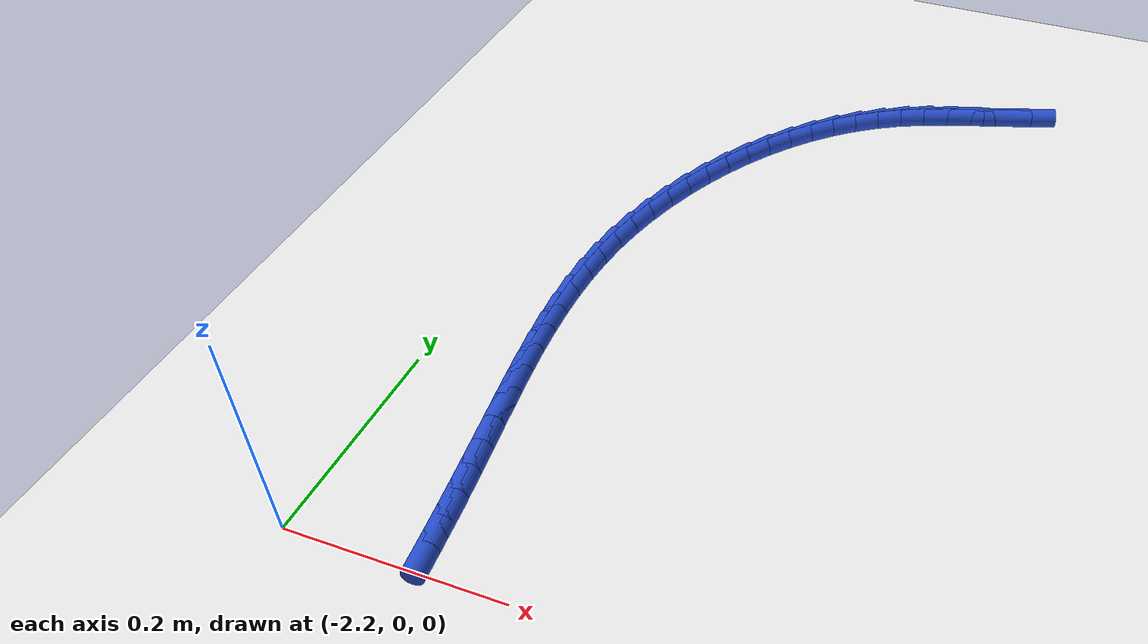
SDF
<sdf version="1.6">
 <world name="default">
  <model name="ground_plane">
   <static>1</static>
   <link name="link">
    <collision name="collision">
     <geometry><plane><normal>0 0 1</normal><size>100 100</size></plane></geometry>
     <surface><friction><ode><mu>100</mu><mu2>50</mu2></ode></friction></surface>
    </collision>
    <visual name="visual">
     <cast_shadows>0</cast_shadows>
     <geometry><plane><normal>0 0 1</normal><size>100 100</size></plane></geometry>
     <material>
      <script><uri>file://media/materials/scripts/gazebo.material</uri><name>Gazebo/WhiteGlow</name></script>
     </material>
    </visual>
   </link>
  </model>
  <model name="line">
   <link name="link_104">
    <pose>-1.7692264215977465 0.7624006203727641 0.01 0 1.57 0.33534031547719884</pose>
    <collision name="collision">
     <geometry><cylinder><radius>0.01</radius><length>0.08</length></cylinder></geometry>
    </collision>
    <visual name="visual">
     <material>
      <script><name>Gazebo/Blue</name><uri>file://media/materials/scripts/gazebo.material</uri></script>
     </material>
     <geometry><cylinder><radius>0.01</radius><length>0.08</length></cylinder></geometry>
    </visual>
   </link>
   <link name="link_105">
    <pose>-1.794505840812203 0.7535906740716695 0.01 0 1.57 0.3203967697265908</pose>
    <collision name="collision">
     <geometry><cylinder><radius>0.01</radius><length>0.08</length></cylinder></geometry>
    </collision>
    <visual name="visual">
     <material>
      <script><name>Gazebo/Blue</name><uri>file://media/materials/scripts/gazebo.material</uri></script>
     </material>
     <geometry><cylinder><radius>0.01</radius><length>0.08</length></cylinder></geometry>
    </visual>
   </link>
   <link name="link_106">
    <pose>-1.820029947707964 0.7451210146395257 0.01 0 1.57 0.33207676167432676</pose>
    <collision name="collision">
     <geometry><cylinder><radius>0.01</radius><length>0.08</length></cylinder></geometry>
    </collision>
    <visual name="visual">
     <material>
      <script><name>Gazebo/Blue</name><uri>file://media/materials/scripts/gazebo.material</uri></script>
     </material>
     <geometry><cylinder><radius>0.01</radius><length>0.08</length></cylinder></geometry>
    </visual>
   </link>
   <link name="link_107">
    <pose>-1.8454557385968353 0.736353008534997 0.01 0 1.57 0.37050194751833143</pose>
    <collision name="collision">
     <geometry><cylinder><radius>0.01</radius><length>0.08</length></cylinder></geometry>
    </collision>
    <visual name="visual">
     <material>
      <script><name>Gazebo/Blue</name><uri>file://media/materials/scripts/gazebo.material</uri></script>
     </material>
     <geometry><cylinder><radius>0.01</radius><length>0.08</length></cylinder></geometry>
    </visual>
   </link>
   <link name="link_108">
    <pose>-1.8704402097906268 0.726648022216749 0.01 0 1.57 0.4361921595259842</pose>
    <collision name="collision">
     <geometry><cylinder><radius>0.01</radius><length>0.08</length></cylinder></geometry>
    </collision>
    <visual name="visual">
     <material>
      <script><name>Gazebo/Blue</name><uri>file://media/materials/scripts/gazebo.material</uri></script>
     </material>
     <geometry><cylinder><radius>0.01</radius><length>0.08</length></cylinder></geometry>
    </visual>
   </link>
   <link name="link_109">
    <pose>-1.8946403624448043 0.7153674346797552 0.01 0 1.57 0.5232091866314043</pose>
    <collision name="collision">
     <geometry><cylinder><radius>0.01</radius><length>0.08</length></cylinder></geometry>
    </collision>
    <visual name="visual">
     <material>
      <script><name>Gazebo/Blue</name><uri>file://media/materials/scripts/gazebo.material</uri></script>
     </material>
     <geometry><cylinder><radius>0.01</radius><length>0.08</length></cylinder></geometry>
    </visual>
   </link>
   <link name="link_110">
    <pose>-1.9177718654428537 0.7020244682000765 0.01 0 1.57 0.609925888993529</pose>
    <collision name="collision">
     <geometry><cylinder><radius>0.01</radius><length>0.08</length></cylinder></geometry>
    </collision>
    <visual name="visual">
     <material>
      <script><name>Gazebo/Blue</name><uri>file://media/materials/scripts/gazebo.material</uri></script>
     </material>
     <geometry><cylinder><radius>0.01</radius><length>0.08</length></cylinder></geometry>
    </visual>
   </link>
   <link name="link_111">
    <pose>-1.9397551657680738 0.6866623498727465 0.01 0 1.57 0.6915799363572562</pose>
    <collision name="collision">
     <geometry><cylinder><radius>0.01</radius><length>0.08</length></cylinder></geometry>
    </collision>
    <visual name="visual">
     <material>
      <script><name>Gazebo/Blue</name><uri>file://media/materials/scripts/gazebo.material</uri></script>
     </material>
     <geometry><cylinder><radius>0.01</radius><length>0.08</length></cylinder></geometry>
    </visual>
   </link>
   <link name="link_112">
    <pose>-1.9605553627344265 0.6694398755496798 0.01 0 1.57 0.7683075674658049</pose>
    <collision name="collision">
     <geometry><cylinder><radius>0.01</radius><length>0.08</length></cylinder></geometry>
    </collision>
    <visual name="visual">
     <material>
      <script><name>Gazebo/Blue</name><uri>file://media/materials/scripts/gazebo.material</uri></script>
     </material>
     <geometry><cylinder><radius>0.01</radius><length>0.08</length></cylinder></geometry>
    </visual>
   </link>
   <link name="link_113">
    <pose>-1.9801375556558747 0.6505158410827907 0.01 0 1.57 0.8404385504691751</pose>
    <collision name="collision">
     <geometry><cylinder><radius>0.01</radius><length>0.08</length></cylinder></geometry>
    </collision>
    <visual name="visual">
     <material>
      <script><name>Gazebo/Blue</name><uri>file://media/materials/scripts/gazebo.material</uri></script>
     </material>
     <geometry><cylinder><radius>0.01</radius><length>0.08</length></cylinder></geometry>
    </visual>
   </link>
   <link name="link_114">
    <pose>-1.9984668438463824 0.6300490423239932 0.01 0 1.57 0.9084302336866495</pose>
    <collision name="collision">
     <geometry><cylinder><radius>0.01</radius><length>0.08</length></cylinder></geometry>
    </collision>
    <visual name="visual">
     <material>
      <script><name>Gazebo/Blue</name><uri>file://media/materials/scripts/gazebo.material</uri></script>
     </material>
     <geometry><cylinder><radius>0.01</radius><length>0.08</length></cylinder></geometry>
    </visual>
   </link>
   <link name="link_115">
    <pose>-2.015508326619911 0.6081982751252019 0.01 0 1.57 0.9728159416372564</pose>
    <collision name="collision">
     <geometry><cylinder><radius>0.01</radius><length>0.08</length></cylinder></geometry>
    </collision>
    <visual name="visual">
     <material>
      <script><name>Gazebo/Blue</name><uri>file://media/materials/scripts/gazebo.material</uri></script>
     </material>
     <geometry><cylinder><radius>0.01</radius><length>0.08</length></cylinder></geometry>
    </visual>
   </link>
   <link name="link_116">
    <pose>-2.031227103290425 0.5851223353383309 0.01 0 1.57 1.0341687422427408</pose>
    <collision name="collision">
     <geometry><cylinder><radius>0.01</radius><length>0.08</length></cylinder></geometry>
    </collision>
    <visual name="visual">
     <material>
      <script><name>Gazebo/Blue</name><uri>file://media/materials/scripts/gazebo.material</uri></script>
     </material>
     <geometry><cylinder><radius>0.01</radius><length>0.08</length></cylinder></geometry>
    </visual>
   </link>
   <link name="link_117">
    <pose>-2.045588273171887 0.5609800188152949 0.01 0 1.57 1.09307878672978</pose>
    <collision name="collision">
     <geometry><cylinder><radius>0.01</radius><length>0.08</length></cylinder></geometry>
    </collision>
    <visual name="visual">
     <material>
      <script><name>Gazebo/Blue</name><uri>file://media/materials/scripts/gazebo.material</uri></script>
     </material>
     <geometry><cylinder><radius>0.01</radius><length>0.08</length></cylinder></geometry>
    </visual>
   </link>
   <link name="link_118">
    <pose>-2.0585569355782583 0.5359301214080081 0.01 0 1.57 1.1501414262136973</pose>
    <collision name="collision">
     <geometry><cylinder><radius>0.01</radius><length>0.08</length></cylinder></geometry>
    </collision>
    <visual name="visual">
     <material>
      <script><name>Gazebo/Blue</name><uri>file://media/materials/scripts/gazebo.material</uri></script>
     </material>
     <geometry><cylinder><radius>0.01</radius><length>0.08</length></cylinder></geometry>
    </visual>
   </link>
   <link name="link_119">
    <pose>-2.070098189823504 0.5101314389683849 0.01 0 1.57 1.2059533410877241</pose>
    <collision name="collision">
     <geometry><cylinder><radius>0.01</radius><length>0.08</length></cylinder></geometry>
    </collision>
    <visual name="visual">
     <material>
      <script><name>Gazebo/Blue</name><uri>file://media/materials/scripts/gazebo.material</uri></script>
     </material>
     <geometry><cylinder><radius>0.01</radius><length>0.08</length></cylinder></geometry>
    </visual>
   </link>
   <link name="link_120">
    <pose>-2.080177135221586 0.4837427673483395 0.01 0 1.57 1.2611143833424263</pose>
    <collision name="collision">
     <geometry><cylinder><radius>0.01</radius><length>0.08</length></cylinder></geometry>
    </collision>
    <visual name="visual">
     <material>
      <script><name>Gazebo/Blue</name><uri>file://media/materials/scripts/gazebo.material</uri></script>
     </material>
     <geometry><cylinder><radius>0.01</radius><length>0.08</length></cylinder></geometry>
    </visual>
   </link>
   <link name="link_121">
    <pose>-2.0887588710864673 0.4569229023997864 0.01 0 1.57 1.3162333716864525</pose>
    <collision name="collision">
     <geometry><cylinder><radius>0.01</radius><length>0.08</length></cylinder></geometry>
    </collision>
    <visual name="visual">
     <material>
      <script><name>Gazebo/Blue</name><uri>file://media/materials/scripts/gazebo.material</uri></script>
     </material>
     <geometry><cylinder><radius>0.01</radius><length>0.08</length></cylinder></geometry>
    </visual>
   </link>
   <link name="link_122">
    <pose>-2.0958084967321113 0.42983063997463994 0.01 0 1.57 1.371936512329695</pose>
    <collision name="collision">
     <geometry><cylinder><radius>0.01</radius><length>0.08</length></cylinder></geometry>
    </collision>
    <visual name="visual">
     <material>
      <script><name>Gazebo/Blue</name><uri>file://media/materials/scripts/gazebo.material</uri></script>
     </material>
     <geometry><cylinder><radius>0.01</radius><length>0.08</length></cylinder></geometry>
    </visual>
   </link>
   <link name="link_123">
    <pose>-2.1012911114724804 0.4026247759248148 0.01 0 1.57 1.4287980865247707</pose>
    <collision name="collision">
     <geometry><cylinder><radius>0.01</radius><length>0.08</length></cylinder></geometry>
    </collision>
    <visual name="visual">
     <material>
      <script><name>Gazebo/Blue</name><uri>file://media/materials/scripts/gazebo.material</uri></script>
     </material>
     <geometry><cylinder><radius>0.01</radius><length>0.08</length></cylinder></geometry>
    </visual>
   </link>
   <link name="link_124">
    <pose>-2.1051742891349505 0.3754621644780082 0.01 0 1.57 1.4843701774728995</pose>
    <collision name="collision">
     <geometry><cylinder><radius>0.01</radius><length>0.08</length></cylinder></geometry>
    </collision>
    <visual name="visual">
     <material>
      <script><name>Gazebo/Blue</name><uri>file://media/materials/scripts/gazebo.material</uri></script>
     </material>
     <geometry><cylinder><radius>0.01</radius><length>0.08</length></cylinder></geometry>
    </visual>
   </link>
   <link name="link_125">
    <pose>-2.107516557285715 0.34842829311122614 0.01 0 1.57 1.5345769376408323</pose>
    <collision name="collision">
     <geometry><cylinder><radius>0.01</radius><length>0.08</length></cylinder></geometry>
    </collision>
    <visual name="visual">
     <material>
      <script><name>Gazebo/Blue</name><uri>file://media/materials/scripts/gazebo.material</uri></script>
     </material>
     <geometry><cylinder><radius>0.01</radius><length>0.08</length></cylinder></geometry>
    </visual>
   </link>
   <link name="link_126">
    <pose>-2.1084916489093564 0.32151825349718816 0.01 0 1.57 -1.5629246189424946</pose>
    <collision name="collision">
     <geometry><cylinder><radius>0.01</radius><length>0.08</length></cylinder></geometry>
    </collision>
    <visual name="visual">
     <material>
      <script><name>Gazebo/Blue</name><uri>file://media/materials/scripts/gazebo.material</uri></script>
     </material>
     <geometry><cylinder><radius>0.01</radius><length>0.08</length></cylinder></geometry>
    </visual>
   </link>
   <link name="link_127">
    <pose>-2.1082807069449583 0.2947213230960038 0.01 0 1.57 -1.5252816724374487</pose>
    <collision name="collision">
     <geometry><cylinder><radius>0.01</radius><length>0.08</length></cylinder></geometry>
    </collision>
    <visual name="visual">
     <material>
      <script><name>Gazebo/Blue</name><uri>file://media/materials/scripts/gazebo.material</uri></script>
     </material>
     <geometry><cylinder><radius>0.01</radius><length>0.08</length></cylinder></geometry>
    </visual>
   </link>
   <link name="link_128">
    <pose>-2.1070648743316007 0.26802677936778213 0.01 0 1.57 -1.494278362595281</pose>
    <collision name="collision">
     <geometry><cylinder><radius>0.01</radius><length>0.08</length></cylinder></geometry>
    </collision>
    <visual name="visual">
     <material>
      <script><name>Gazebo/Blue</name><uri>file://media/materials/scripts/gazebo.material</uri></script>
     </material>
     <geometry><cylinder><radius>0.01</radius><length>0.08</length></cylinder></geometry>
    </visual>
   </link>
   <link name="link_129">
    <pose>-2.105025294008367 0.24142389977263293 0.01 0 1.57 -1.4700081854612153</pose>
    <collision name="collision">
     <geometry><cylinder><radius>0.01</radius><length>0.08</length></cylinder></geometry>
    </collision>
    <visual name="visual">
     <material>
      <script><name>Gazebo/Blue</name><uri>file://media/materials/scripts/gazebo.material</uri></script>
     </material>
     <geometry><cylinder><radius>0.01</radius><length>0.08</length></cylinder></geometry>
    </visual>
   </link>
   <link name="link_130">
    <pose>-2.1023431089143374 0.21490196177066526 0.01 0 1.57 -1.4525064437650896</pose>
    <collision name="collision">
     <geometry><cylinder><radius>0.01</radius><length>0.08</length></cylinder></geometry>
    </collision>
    <visual name="visual">
     <material>
      <script><name>Gazebo/Blue</name><uri>file://media/materials/scripts/gazebo.material</uri></script>
     </material>
     <geometry><cylinder><radius>0.01</radius><length>0.08</length></cylinder></geometry>
    </visual>
   </link>
   <link name="link_131">
    <pose>-2.099199461988594 0.18845024282198852 0.01 0 1.57 -1.4417830140535484</pose>
    <collision name="collision">
     <geometry><cylinder><radius>0.01</radius><length>0.08</length></cylinder></geometry>
    </collision>
    <visual name="visual">
     <material>
      <script><name>Gazebo/Blue</name><uri>file://media/materials/scripts/gazebo.material</uri></script>
     </material>
     <geometry><cylinder><radius>0.01</radius><length>0.08</length></cylinder></geometry>
    </visual>
   </link>
   <link name="link_132">
    <pose>-2.0957754961702184 0.1620580203867122 0.01 0 1.57 -1.4378205370427277</pose>
    <collision name="collision">
     <geometry><cylinder><radius>0.01</radius><length>0.08</length></cylinder></geometry>
    </collision>
    <visual name="visual">
     <material>
      <script><name>Gazebo/Blue</name><uri>file://media/materials/scripts/gazebo.material</uri></script>
     </material>
     <geometry><cylinder><radius>0.01</radius><length>0.08</length></cylinder></geometry>
    </visual>
   </link>
   <link name="link_133">
    <pose>-2.0922516510120843 0.13571449998541255 0.01 0 1.57 -1.4389261145003667</pose>
    <collision name="collision">
     <geometry><cylinder><radius>0.01</radius><length>0.08</length></cylinder></geometry>
    </collision>
    <visual name="visual">
     <material>
      <script><name>Gazebo/Blue</name><uri>file://media/materials/scripts/gazebo.material</uri></script>
     </material>
     <geometry><cylinder><radius>0.01</radius><length>0.08</length></cylinder></geometry>
    </visual>
   </link>
   <link name="link_134">
    <pose>-2.0887618443668075 0.10940412908490674 0.01 0 1.57 -1.4423625370397712</pose>
    <collision name="collision">
     <geometry><cylinder><radius>0.01</radius><length>0.08</length></cylinder></geometry>
    </collision>
    <visual name="visual">
     <material>
      <script><name>Gazebo/Blue</name><uri>file://media/materials/scripts/gazebo.material</uri></script>
     </material>
     <geometry><cylinder><radius>0.01</radius><length>0.08</length></cylinder></geometry>
    </visual>
   </link>
   <link name="link_135">
    <pose>-2.0853652861785155 0.08310371432540957 0.01 0 1.57 -1.4478803915755158</pose>
    <collision name="collision">
     <geometry><cylinder><radius>0.01</radius><length>0.08</length></cylinder></geometry>
    </collision>
    <visual name="visual">
     <material>
      <script><name>Gazebo/Blue</name><uri>file://media/materials/scripts/gazebo.material</uri></script>
     </material>
     <geometry><cylinder><radius>0.01</radius><length>0.08</length></cylinder></geometry>
    </visual>
   </link>
   <link name="link_136">
    <pose>-2.0821144462051526 0.05678937298780495 0.01 0 1.57 -1.4554696366260282</pose>
    <collision name="collision">
     <geometry><cylinder><radius>0.01</radius><length>0.08</length></cylinder></geometry>
    </collision>
    <visual name="visual">
     <material>
      <script><name>Gazebo/Blue</name><uri>file://media/materials/scripts/gazebo.material</uri></script>
     </material>
     <geometry><cylinder><radius>0.01</radius><length>0.08</length></cylinder></geometry>
    </visual>
   </link>
   <link name="link_137">
    <pose>-2.079061794204665 0.030437222352977883 0.01 0 1.57 -1.4651110483442207</pose>
    <collision name="collision">
     <geometry><cylinder><radius>0.01</radius><length>0.08</length></cylinder></geometry>
    </collision>
    <visual name="visual">
     <material>
      <script><name>Gazebo/Blue</name><uri>file://media/materials/scripts/gazebo.material</uri></script>
     </material>
     <geometry><cylinder><radius>0.01</radius><length>0.08</length></cylinder></geometry>
    </visual>
   </link>
  </model>
 </world>
</sdf>
